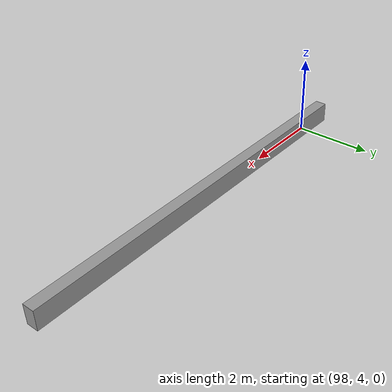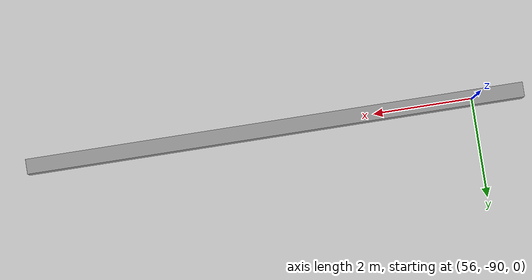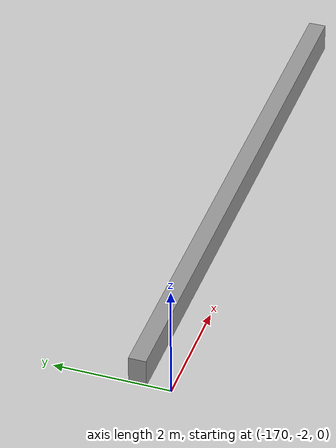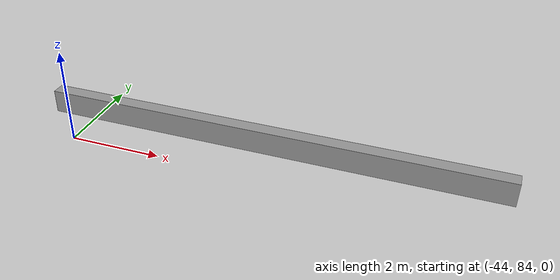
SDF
<sdf version="1.6">
 <world name="four_accident_sites">
  <include><uri>model://sun</uri></include>
  <include><uri>model://ground_plane</uri></include>
  <physics type="ode">
   <max_step_size>0.004</max_step_size>
   <real_time_factor>1</real_time_factor>
   <real_time_update_rate>250</real_time_update_rate>
  </physics>
  <model name="accident_site_1_guardrail">
   <static>true</static>
   <pose>-165 -1.43 0 0 0 0</pose>
   <link name="link">
    <collision name="collision"><geometry><box><size>10 0.3 1</size></box></geometry></collision>
    <visual name="visual">
     <geometry><box><size>10 0.3 1</size></box></geometry>
     <material><ambient>0.6 0.6 0.6 1</ambient></material>
    </visual>
   </link>
  </model>
  <model name="accident_site_2_guardrail">
   <static>true</static>
   <pose>102.2 4.1 0 0 0 0</pose>
   <link name="link">
    <collision name="collision"><geometry><box><size>10 0.3 1</size></box></geometry></collision>
    <visual name="visual">
     <geometry><box><size>10 0.3 1</size></box></geometry>
     <material><ambient>0.6 0.6 0.6 1</ambient></material>
    </visual>
   </link>
  </model>
  <model name="accident_site_3_guardrail">
   <static>true</static>
   <pose>-40 85 0 0 0 0</pose>
   <link name="link">
    <collision name="collision"><geometry><box><size>10 0.3 1</size></box></geometry></collision>
    <visual name="visual">
     <geometry><box><size>10 0.3 1</size></box></geometry>
     <material><ambient>0.6 0.6 0.6 1</ambient></material>
    </visual>
   </link>
  </model>
  <model name="accident_site_4_guardrail">
   <static>true</static>
   <pose>60 -90 0 0 0 0</pose>
   <link name="link">
    <collision name="collision"><geometry><box><size>10 0.3 1</size></box></geometry></collision>
    <visual name="visual">
     <geometry><box><size>10 0.3 1</size></box></geometry>
     <material><ambient>0.6 0.6 0.6 1</ambient></material>
    </visual>
   </link>
  </model>
 </world>
</sdf>
